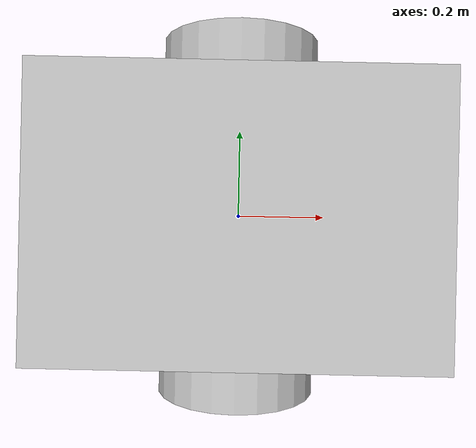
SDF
<?xml version="1.0" ?>
<sdf version="1.9">
  <model name="fyp_robot">

    <pose>0 0 0.25 0 0 0</pose>

    <link name="base_link">
      <inertial>
        <mass>10</mass>
        <inertia>
          <ixx>0.5</ixx>
          <iyy>0.5</iyy>
          <izz>0.5</izz>
        </inertia>
      </inertial>

      <collision name="base_collision">
        <geometry>
          <box>
            <size>0.7 0.5 0.3</size>
          </box>
        </geometry>
      </collision>

      <visual name="base_visual">
        <geometry>
          <box>
            <size>0.7 0.5 0.3</size>
          </box>
        </geometry>
      </visual>
    </link>

    <link name="left_wheel">
      <pose>0 0.32 -0.12 1.5708 0 0</pose>
      <inertial>
        <mass>1</mass>
        <inertia>
          <ixx>0.02</ixx>
          <iyy>0.02</iyy>
          <izz>0.02</izz>
        </inertia>
      </inertial>
      <collision name="collision">
        <geometry>
          <cylinder>
            <radius>0.16</radius>
            <length>0.08</length>
          </cylinder>
        </geometry>
      </collision>
      <visual name="visual">
        <geometry>
          <cylinder>
            <radius>0.16</radius>
            <length>0.08</length>
          </cylinder>
        </geometry>
      </visual>
    </link>

    <link name="right_wheel">
      <pose>0 -0.32 -0.12 1.5708 0 0</pose>
      <inertial>
        <mass>1</mass>
        <inertia>
          <ixx>0.02</ixx>
          <iyy>0.02</iyy>
          <izz>0.02</izz>
        </inertia>
      </inertial>
      <collision name="collision">
        <geometry>
          <cylinder>
            <radius>0.16</radius>
            <length>0.08</length>
          </cylinder>
        </geometry>
      </collision>
      <visual name="visual">
        <geometry>
          <cylinder>
            <radius>0.16</radius>
            <length>0.08</length>
          </cylinder>
        </geometry>
      </visual>
    </link>

    <joint name="left_wheel_joint" type="revolute">
      <parent>base_link</parent>
      <child>left_wheel</child>
      <axis>
        <xyz>0 1 0</xyz>
        <dynamics>
          <damping>0.01</damping>
        </dynamics>
      </axis>
    </joint>

    <joint name="right_wheel_joint" type="revolute">
      <parent>base_link</parent>
      <child>right_wheel</child>
      <axis>
        <xyz>0 1 0</xyz>
        <dynamics>
          <damping>0.01</damping>
        </dynamics>
      </axis>
    </joint>

    <link name="caster">
      <!-- z chosen so the caster bottom (-0.28 from base origin) matches the
           wheel bottoms, keeping the chassis level instead of tipping back. -->
      <pose>-0.25 0 -0.20 0 0 0</pose>
      <collision name="collision">
        <geometry>
          <sphere>
            <radius>0.08</radius>
          </sphere>
        </geometry>
        <surface>
          <friction>
            <ode>
              <mu>0.1</mu>
              <mu2>0.1</mu2>
            </ode>
          </friction>
        </surface>
      </collision>
      <visual name="visual">
        <geometry>
          <sphere>
            <radius>0.08</radius>
          </sphere>
        </geometry>
      </visual>
    </link>

    <joint name="caster_joint" type="fixed">
      <parent>base_link</parent>
      <child>caster</child>
    </joint>

    <link name="front_caster">
      <pose>0.25 0 -0.20 0 0 0</pose>
      <collision name="collision">
        <geometry>
          <sphere>
            <radius>0.08</radius>
          </sphere>
        </geometry>
        <surface>
          <friction>
            <ode>
              <mu>0.1</mu>
              <mu2>0.1</mu2>
            </ode>
          </friction>
        </surface>
      </collision>
      <visual name="visual">
        <geometry>
          <sphere>
            <radius>0.08</radius>
          </sphere>
        </geometry>
      </visual>
    </link>

    <joint name="front_caster_joint" type="fixed">
      <parent>base_link</parent>
      <child>front_caster</child>
    </joint>

    <plugin
      filename="gz-sim-velocity-control-system"
      name="gz::sim::systems::VelocityControl">
      <topic>/cmd_vel</topic>
    </plugin>

    <!-- Odometry derived from the robot's TRUE world pose (no wheel
         integration), so odom can never diverge from physical motion. -->
    <plugin
      filename="gz-sim-odometry-publisher-system"
      name="gz::sim::systems::OdometryPublisher">
      <odom_frame>odom</odom_frame>
      <child_frame_id>base_link</child_frame_id>
      <odom_topic>/odom</odom_topic>
      <tf_topic>/tf</tf_topic>
      <odom_publish_frequency>20</odom_publish_frequency>
      <dimensions>3</dimensions>
    </plugin>

  </model>
</sdf>
